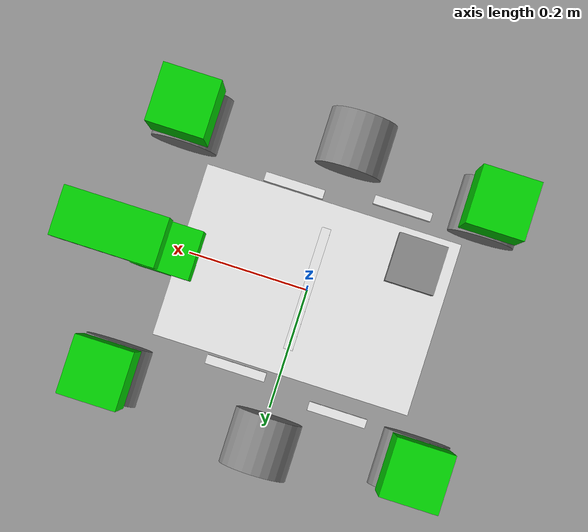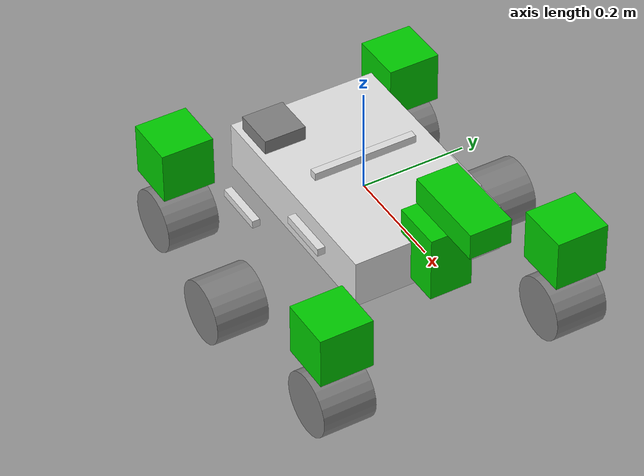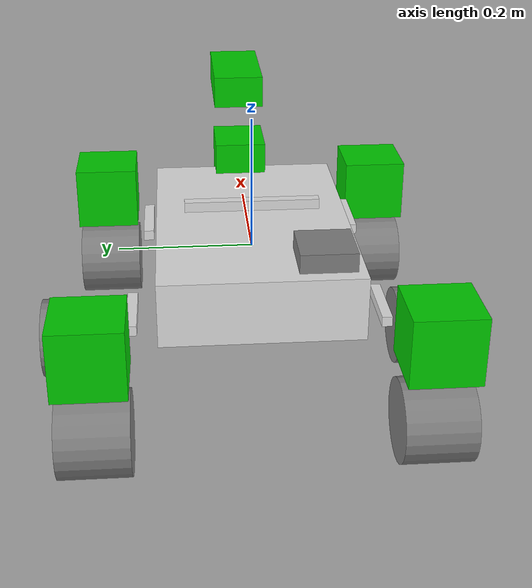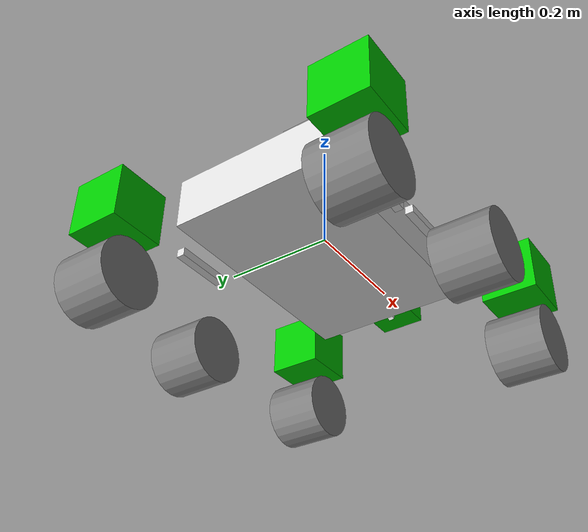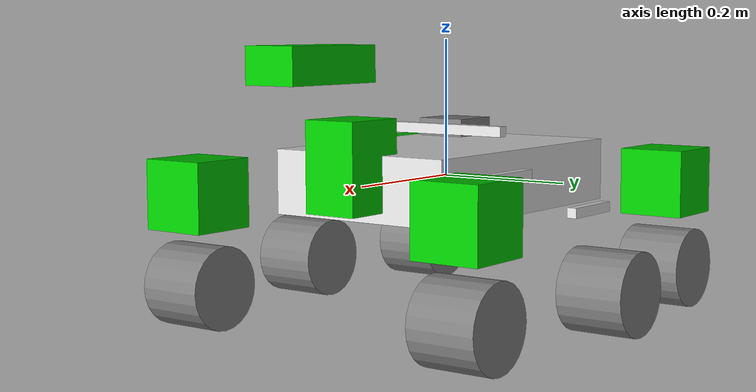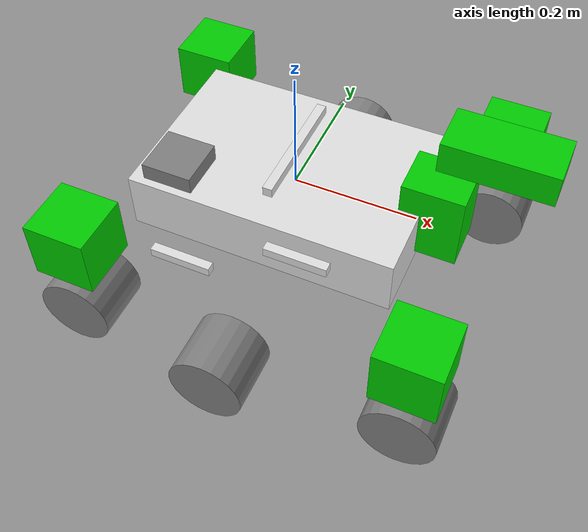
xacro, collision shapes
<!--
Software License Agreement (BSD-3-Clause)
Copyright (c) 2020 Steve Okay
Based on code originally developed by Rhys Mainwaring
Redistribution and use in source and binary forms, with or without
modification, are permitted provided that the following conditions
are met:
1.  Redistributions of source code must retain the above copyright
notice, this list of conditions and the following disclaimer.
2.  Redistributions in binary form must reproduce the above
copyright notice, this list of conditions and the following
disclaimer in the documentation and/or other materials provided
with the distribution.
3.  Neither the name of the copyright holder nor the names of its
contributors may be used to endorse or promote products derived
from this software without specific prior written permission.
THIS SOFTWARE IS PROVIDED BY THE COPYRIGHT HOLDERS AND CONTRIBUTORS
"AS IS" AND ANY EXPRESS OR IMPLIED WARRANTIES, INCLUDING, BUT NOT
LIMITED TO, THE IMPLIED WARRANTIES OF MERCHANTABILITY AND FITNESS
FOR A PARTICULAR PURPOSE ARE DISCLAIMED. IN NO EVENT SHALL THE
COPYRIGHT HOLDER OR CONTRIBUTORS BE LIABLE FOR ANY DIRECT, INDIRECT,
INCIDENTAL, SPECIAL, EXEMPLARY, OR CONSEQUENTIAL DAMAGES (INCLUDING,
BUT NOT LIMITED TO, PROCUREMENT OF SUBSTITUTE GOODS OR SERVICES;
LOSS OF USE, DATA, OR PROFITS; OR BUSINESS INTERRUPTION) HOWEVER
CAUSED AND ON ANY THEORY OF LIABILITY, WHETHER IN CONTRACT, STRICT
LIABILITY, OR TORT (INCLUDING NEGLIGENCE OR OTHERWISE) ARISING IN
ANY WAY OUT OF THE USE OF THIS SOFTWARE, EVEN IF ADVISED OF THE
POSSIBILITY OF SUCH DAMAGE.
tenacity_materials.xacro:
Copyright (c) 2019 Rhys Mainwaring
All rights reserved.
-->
<?xml version="1.0" ?>

<!-- Robot description for Tenacity, a Sawppy Rover robot.

 -->
<robot name="tenacity" xmlns:xacro="http://ros.org/wiki/xacro">
    <!-- Include macros for materials, inertials, sensors -->
    <xacro:include filename="$(find tenacity_description)/urdf/tenacity_materials.xacro"/>
    <xacro:include filename="$(find tenacity_description)/urdf/tenacity_inertials.xacro"/>
    <xacro:include filename="$(find tenacity_description)/urdf/tenacity_laser.xacro"/>
    <xacro:include filename="$(find tenacity_description)/urdf/tenacity_imu.xacro"/>
    <xacro:include filename="$(find tenacity_description)/urdf/sensor_stalk.xacro"/>
    <xacro:include filename="$(find tenacity_description)/urdf/mast_mount.xacro"/>
    <xacro:include filename="$(find tenacity_description)/urdf/astra.xacro"/>
    <xacro:include filename="$(find tenacity_description)/urdf/tenacity_sonar.xacro"/>
    <xacro:include filename="$(find tenacity_description)/urdf/tenacity_hazcam.xacro"/>

    <!-- Chassis -->
    <xacro:property name="makerbeam_width" value="0.015" />
    <xacro:property name="makerbeam_depth" value="0.015" />
    <xacro:property name="makerbeam_density" value="0.100" />

    <xacro:property name="body_box_length" value="0.425" />
    <xacro:property name="body_box_width" value="0.285" />
    <xacro:property name="body_box_depth" value="0.093" />
    <xacro:property name="body_box_mass" value="1.00" />

    <xacro:property name="front_rocker_arm_length" value="0.182" />
    <xacro:property name="back_rocker_arm_length" value="0.161" />
    <xacro:property name="front_rocker_arm_angle" value="0.3490658503988659" />
    <xacro:property name="back_rocker_arm_angle" value="-0.3141592653589793" />

    <xacro:property name="front_bogie_arm_length" value="0.122" />
    <xacro:property name="back_bogie_arm_length" value="0.117" />
    <xacro:property name="front_bogie_arm_angle" value="0.5201081170943103" />
    <xacro:property name="back_bogie_arm_angle" value="0.25656340004316625" />

    <xacro:property name="wheel_width" value="0.100" />
    <xacro:property name="wheel_radius" value="0.060" />

    <!-- The base link - the reference link for the entire model -->
    <link name="base_link">
        <visual>
            <origin rpy="0 0 0" xyz="0 0 0" />
            <geometry>
                <box size="0.01 0.01 0.01"/>
            </geometry>
            <material name="orange" />
        </visual>
        <collision>
            <origin rpy="0 0 0" xyz="0 0 0" />
            <geometry>
                <box size="0.01 0.01 0.01"/>
            </geometry>
        </collision>
        <xacro:solid_cuboid_inertial
            rpy="0 0 0" xyz="0 0 0"
            mass="0.01"
            x="0.01" y="0.01" z="0.01" />
    </link>

    <gazebo reference="base_link">
        <material>Gazebo/Orange</material>
    </gazebo>

    <link name="body_box_link">
        <visual>
            <origin rpy="0 0 0" xyz="0 0 0" />
            <geometry>
                <mesh filename="package://tenacity_description/meshes/bases/body_box.stl" />
            </geometry>
            <material name="silver" />
        </visual>
        <collision>
            <origin rpy="0 0 0" xyz="0 0 0" />
            <geometry>
                <box size="${body_box_length} ${body_box_width} ${body_box_depth}"/>
            </geometry>
        </collision>
        <xacro:solid_cuboid_inertial
            rpy="0 0 0" xyz="0 0 0"
            mass="${body_box_mass}"
            x="${body_box_length}" y="${body_box_width}" z="${body_box_depth}" />
    </link>

    <gazebo reference="body_box_link">
        <material>Gazebo/Silver</material>
    </gazebo>

    <joint name="body_box_joint" type="fixed">
        <origin rpy="0 0 0" xyz="0 0 0"/>
        <parent link="base_link" />
        <child link="body_box_link" />
    </joint>

    <gazebo reference="body_box_joint">
    </gazebo>

    <!-- Differential -->
    <link name="diff_brace_link">
        <visual>
            <origin rpy="0 0 0" xyz="0 0 0" />
            <geometry>
                <mesh filename="package://tenacity_description/meshes/bases/differential.stl" />
            </geometry>
            <material name="silver" />
        </visual>
        <collision>
            <origin rpy="0 0 ${math_pi_over_2}" xyz="0 0 0" />
            <geometry>
                <box size="0.200 0.015 0.015"/>
            </geometry>
        </collision>
        <xacro:solid_cuboid_inertial
            rpy="0 0 ${math_pi_over_2}" xyz="0 0 0"
            mass="0.1"
            x="0.2" y="0.015" z="0.015" />
    </link>

    <gazebo reference="diff_brace_link">
        <material>Gazebo/Silver</material>
    </gazebo>

    <joint name="diff_brace_joint" type="revolute">
        <origin rpy="0 0 0" xyz="0 0 0.0681"/>
        <axis xyz="0 0 1" />
        <limit
            lower="${-math_pi_over_4}"
            upper="${math_pi_over_4}"
            effort="100.0"
            velocity="100.0" />
        <parent link="base_link" />
        <child link="diff_brace_link" />
    </joint>

    <gazebo reference="diff_brace_joint">
        <provideFeedback>true</provideFeedback>
        <implicitSpringDamper>true</implicitSpringDamper>
    </gazebo>

    <xacro:macro name="turnbuckle_assembly" params="lat_label reflect">
        <gazebo>
            <link name="${lat_label}_turnbuckle_link">
                <pose>0.035 ${reflect * 0.17} 0.07 0 0 0</pose>
                <visual name="${lat_label}_turnbuckle_visual">
                    <pose>0 0 0 0 0 0</pose>
                    <geometry>
                        <mesh>
                            <uri>package://tenacity_description/meshes/bases/turnbuckle.stl</uri>
                        </mesh>
                    </geometry>
                    <material>
                        <script>
                            <name>Gazebo/Blue</name>
                        </script>
                    </material>
                </visual>
                <collision name="${lat_label}_turnbuckle_collision">
                    <pose>0 0 0 0 ${math_pi_over_2} 0</pose>
                    <geometry>
                        <cylinder>
                            <length>0.07</length>
                            <radius>0.0025</radius>
                        </cylinder>
                    </geometry>
                </collision>
                <inertial>
                    <mass>0.01</mass>
                    <inertia>
                        <ixx>0.0001</ixx>
                        <ixy>0</ixy>
                        <ixz>0</ixz>
                        <iyy>0.0001</iyy>
                        <iyz>0</iyz>
                        <izz>0.0001</izz>
                    </inertia>
                </inertial>
            </link>

            <joint name="back_${lat_label}_turnbuckle_joint" type="ball">
                <pose>-0.035 0 0 0 0 0</pose>
                <parent>diff_brace_link</parent>
                <child>${lat_label}_turnbuckle_link</child>
            </joint>

            <joint name="front_${lat_label}_turnbuckle_joint" type="ball">
                <pose>0.035 0 0 0 0 0</pose>
                <parent>${lat_label}_rocker_link</parent>
                <child>${lat_label}_turnbuckle_link</child>
            </joint>
        </gazebo>
    </xacro:macro>
    <xacro:turnbuckle_assembly lat_label="left" reflect="1"/>
    <xacro:turnbuckle_assembly lat_label="right" reflect="-1"/>

    <!-- Rocker -->
    <xacro:macro name="rocker_link" params="lat_label reflect">
        <link name="${lat_label}_rocker_link">
            <visual>
                <origin rpy="0 0 0" xyz="0 0 0" />
                <geometry>
                    <mesh filename="package://tenacity_description/meshes/bases/${lat_label}_rocker_asm.stl" />
                </geometry>
                <material name="silver" />
            </visual>
            <collision>
                <origin rpy="0 0 0" xyz="0 0 0" />
                <geometry>
                    <box size="0.1 0.015 0.015"/>
                </geometry>
            </collision>
            <xacro:solid_cuboid_inertial
                rpy="0 0 0" xyz="0 0 0"
                mass="0.25"
                x="0.1" y="0.015" z="0.015" />
        </link>

        <gazebo reference="${lat_label}_rocker_link">
            <material>Gazebo/Silver</material>
        </gazebo>

    </xacro:macro>
    <xacro:rocker_link lat_label="left" reflect="1"/>
    <xacro:rocker_link lat_label="right" reflect="-1"/>

    <!-- Rocker Joint  -->
    <xacro:macro name="rocker_joint" params="lat_label reflect">
        <joint name="${lat_label}_rocker_joint" type="continuous">
            <origin rpy="0 0 0" xyz="0.071 ${reflect * 0.155} 0.0118"/>
            <axis xyz="0 1 0" />
            <limit
                lower="${-math_pi_over_4}"
                upper="${math_pi_over_4}"
                effort="100.0"
                velocity="100.0" />
            <parent link="base_link" />
            <child link="${lat_label}_rocker_link" />
        </joint>

        <gazebo reference="${lat_label}_rocker_joint">
            <provideFeedback>true</provideFeedback>
            <implicitSpringDamper>true</implicitSpringDamper>
        </gazebo>
    </xacro:macro>
    <!-- Fixed Rocker Joint (for testing)  -->
    <xacro:rocker_joint lat_label="left" reflect="1"/>
    <xacro:rocker_joint lat_label="right" reflect="-1"/>

    <xacro:macro name="corner_link" params="lon_label lat_label reflect">
        <link name="${lon_label}_${lat_label}_corner_link">
            <visual>
                <origin rpy="0 0 0" xyz="0 0 0" />
                <geometry>
                    <mesh filename="package://tenacity_description/meshes/bases/${lon_label}_${lat_label}_steering_asm.stl" />
                </geometry>
                <material name="green" />
            </visual>
            <collision>
                <origin rpy="0 0 0" xyz="0 0 0" />
                <geometry>
                    <box size="0.1 0.1 0.1"/>
                </geometry>
            </collision>
            <xacro:solid_cuboid_inertial
                rpy="0 0 0" xyz="0 0 0"
                mass="0.25"
                x="0.1" y="0.1" z="0.1" />
        </link>
        <gazebo reference="${lon_label}_${lat_label}_corner_link">
            <material>Gazebo/Green</material>
        </gazebo>
      </xacro:macro>

    <xacro:macro name="corner_link_box" params="lon_label lat_label reflect">
        <link name="${lon_label}_${lat_label}_corner_link_box">
            <visual>
                <origin rpy="0 0 0" xyz="0.05 0 0.05" />
                <geometry>
                     <box size="0.1 0.1 0.1"/>
                </geometry>
                <material name="blue" />
            </visual>
            <collision>
                <origin rpy="0 0 0" xyz="0 0 0" />
                <geometry>
                    <box size="0.1 0.1 0.1"/>
                </geometry>
            </collision>
            <xacro:solid_cuboid_inertial
                rpy="0 0 0" xyz="0 0 0"
                mass="0.25"
                x="0.1" y="0.1" z="0.1" />
        </link>

        <gazebo reference="${lon_label}_${lat_label}_corner_link_box">
            <material>Gazebo/Blue</material>
        </gazebo>

    </xacro:macro>
    <xacro:corner_link lon_label="front" lat_label="left" reflect="1"/>
    <xacro:corner_link lon_label="front" lat_label="right" reflect="-1"/>

    <xacro:macro name="front_corner_joint" params="lat_label reflect">
        <joint name="front_${lat_label}_corner_joint" type="continuous">
            <origin rpy="0 0 0" xyz="0.2116 ${reflect * 0.075} -0.0279"/>
            <axis xyz="0 0 1" />
            <parent link="${lat_label}_rocker_link" />
            <child link="front_${lat_label}_corner_link" />
        </joint>

        <transmission name="front_${lat_label}_corner_transmission" >
            <type>transmission_interface/SimpleTransmission</type>
            <actuator name="front_${lat_label}_corner_actuator">
                <mechanicalReduction>1</mechanicalReduction>
            </actuator>
            <joint name="front_${lat_label}_corner_joint">
                <hardwareInterface>hardware_interface/PositionJointInterface</hardwareInterface>
            </joint>
        </transmission>

        <gazebo reference="front_${lat_label}_corner_joint">
            <provideFeedback>true</provideFeedback>
        </gazebo>
    </xacro:macro>
    <xacro:front_corner_joint lat_label="left" reflect="1"/>
    <xacro:front_corner_joint lat_label="right" reflect="-1"/>

    <xacro:macro name="wheel_link" params="lon_label lat_label reflect">
        <link name="${lon_label}_${lat_label}_wheel_link">
            <visual>
                <origin rpy="${reflect * math_pi_over_2} 0 0" xyz="0 0 0" />
                <geometry>
                    <mesh filename="package://tenacity_description/meshes/wheels/wheel_asm.stl" />
                </geometry>
                <material name="dark_gray" />
            </visual>
            <collision>
                <origin rpy="${reflect * math_pi_over_2} 0 0" xyz="0 0 0" />
                <geometry>
                    <cylinder length="${wheel_width}" radius="${wheel_radius}" />
                </geometry>
            </collision>
            <xacro:solid_cylinder_inertial
                rpy="0 0 0" xyz="0 0 0"
                mass="0.25"
                radius="${wheel_radius}" length="${wheel_width}" />
        </link>

        <gazebo reference="${lon_label}_${lat_label}_wheel_link">
            <material>Gazebo/DarkGray</material>
        </gazebo>
    </xacro:macro>
    <xacro:wheel_link lon_label="front" lat_label="left" reflect="1"/>
    <xacro:wheel_link lon_label="front" lat_label="right" reflect="-1"/>

    <xacro:macro name="corner_wheel_joint" params="lon_label lat_label reflect">
        <joint name="${lon_label}_${lat_label}_wheel_joint" type="continuous">
            <origin rpy="0 0 0" xyz="0 0 -0.132"/>
            <axis xyz="0 1 0" />
            <parent link="${lon_label}_${lat_label}_corner_link" />
            <child link="${lon_label}_${lat_label}_wheel_link" />
        </joint>

        <transmission name="${lon_label}_${lat_label}_wheel_transmission" >
            <type>transmission_interface/SimpleTransmission</type>
            <actuator name="${lon_label}_${lat_label}_wheel_actuator">
                <mechanicalReduction>1</mechanicalReduction>
            </actuator>
            <joint name="${lon_label}_${lat_label}_wheel_joint">
                <hardwareInterface>hardware_interface/VelocityJointInterface</hardwareInterface>
            </joint>
        </transmission>

        <gazebo reference="${lon_label}_${lat_label}_wheel_joint">
            <provideFeedback>true</provideFeedback>
        </gazebo>
    </xacro:macro>
    <xacro:corner_wheel_joint lon_label="front" lat_label="left" reflect="1"/>
    <xacro:corner_wheel_joint lon_label="front" lat_label="right" reflect="-1"/>

    <!-- Bogie -->
    <xacro:macro name="bogie_link" params="lat_label reflect">
        <link name="${lat_label}_bogie_link">
            <visual>
                <origin rpy="0 0 0" xyz="0 0 0" />
                <geometry>
                    <mesh filename="package://tenacity_description/meshes/bases/${lat_label}_bogie_asm.stl" />
                </geometry>
                <material name="silver" />
            </visual>
            <collision>
                <origin rpy="0 0 0" xyz="0 0 0" />
                <geometry>
                    <box size="0.1 0.015 0.015"/>
                </geometry>
            </collision>
            <xacro:solid_cuboid_inertial
                rpy="0 0 0" xyz="0 0 0"
                mass="0.25"
                x="0.1" y="0.015" z="0.015" />
        </link>

        <gazebo reference="${lat_label}_bogie_link">
            <material>Gazebo/Silver</material>
        </gazebo>
    </xacro:macro>
    <xacro:bogie_link lat_label="left" reflect="1"/>
    <xacro:bogie_link lat_label="right" reflect="-1"/>

    <!-- Bogie Joint  -->
    <xacro:macro name="bogie_joint" params="lat_label reflect">
        <joint name="${lat_label}_bogie_joint" type="revolute">
            <origin rpy="0 0 0" xyz="-0.181 ${reflect * 0.025} -0.062"/>
            <axis xyz="0 1 0" />
            <limit
                lower="${-math_pi_over_4}"
                upper="${math_pi_over_4}"
                effort="100.0"
                velocity="100.0" />
            <parent link="${lat_label}_rocker_link" />
            <child link="${lat_label}_bogie_link" />
        </joint>

        <gazebo reference="${lat_label}_bogie_joint">
            <provideFeedback>true</provideFeedback>
            <implicitSpringDamper>true</implicitSpringDamper>
        </gazebo>
    </xacro:macro>
    <!-- Fixed Bogie Joint  (for testing) -->
    <xacro:bogie_joint lat_label="left" reflect="1"/>
    <xacro:bogie_joint lat_label="right" reflect="-1"/>

    <xacro:wheel_link lon_label="mid" lat_label="left" reflect="1"/>
    <xacro:wheel_link lon_label="mid" lat_label="right" reflect="-1"/>

    <xacro:macro name="mid_wheel_joint" params="lat_label reflect">
        <joint name="mid_${lat_label}_wheel_joint" type="continuous">
            <origin rpy="0 0 0" xyz="0.1063 ${reflect * 0.0929} -0.0959"/>
            <axis xyz="0 1 0" />
            <parent link="${lat_label}_bogie_link" />
            <child link="mid_${lat_label}_wheel_link" />
        </joint>

        <transmission name="mid_${lat_label}_wheel_transmission" >
            <type>transmission_interface/SimpleTransmission</type>
            <actuator name="mid_${lat_label}_wheel_actuator">
                <mechanicalReduction>1</mechanicalReduction>
            </actuator>
            <joint name="mid_${lat_label}_wheel_joint">
                <hardwareInterface>hardware_interface/VelocityJointInterface</hardwareInterface>
            </joint>
        </transmission>

        <gazebo reference="mid_${lat_label}_wheel_joint">
            <provideFeedback>true</provideFeedback>
        </gazebo>
    </xacro:macro>
    <xacro:mid_wheel_joint lat_label="left" reflect="1"/>
    <xacro:mid_wheel_joint lat_label="right" reflect="-1"/>

    <xacro:corner_link lon_label="back" lat_label="left" reflect="1"/>
    <xacro:corner_link lon_label="back" lat_label="right" reflect="-1"/>

    <xacro:macro name="back_corner_joint" params="lat_label reflect">
        <joint name="back_${lat_label}_corner_joint" type="continuous">
            <origin rpy="0 0 0" xyz="-0.149 ${reflect * 0.05} 0.0338"/>
            <axis xyz="0 0 1" />
            <parent link="${lat_label}_bogie_link" />
            <child link="back_${lat_label}_corner_link" />
        </joint>

        <transmission name="back_${lat_label}_corner_transmission" >
            <type>transmission_interface/SimpleTransmission</type>
            <actuator name="back_${lat_label}_corner_actuator">
                <mechanicalReduction>1</mechanicalReduction>
            </actuator>
            <joint name="back_${lat_label}_corner_joint">
                <hardwareInterface>hardware_interface/PositionJointInterface</hardwareInterface>
            </joint>
        </transmission>

        <gazebo reference="back_${lat_label}_corner_joint">
            <provideFeedback>true</provideFeedback>
        </gazebo>
    </xacro:macro>
    <xacro:back_corner_joint lat_label="left" reflect="1"/>
    <xacro:back_corner_joint lat_label="right" reflect="-1"/>

    <xacro:wheel_link lon_label="back" lat_label="left" reflect="1"/>
    <xacro:wheel_link lon_label="back" lat_label="right" reflect="-1"/>

    <xacro:corner_wheel_joint lon_label="back" lat_label="left" reflect="1"/>
    <xacro:corner_wheel_joint lon_label="back" lat_label="right" reflect="-1"/>

    <!-- AstraCam -->
    <xacro:astra_link />
    <xacro:astra_joint x="0.3080" y="0.005" z="0.170" roll="0.00" pitch="0.00" yaw="0.00" />

    <!-- Antenna/Sensor Mast -->
    <xacro:mast_mount_link />
    <xacro:mast_mount_joint x="-0.152" y="-0.090" z="0.050" />

     <!-- SensorStalk -->
     <xacro:sensor_stalk_link />
     <xacro:sensor_stalk_joint x="0.2280" y="0.005" z="0.0320" />

     <!-- Sonar Sensor -->
     <xacro:sonar_link mount_point="cliff"/>
     <xacro:sonar_joint x="0.230" y="0.005" z="-0.0320" roll="0.00" pitch="0.4" yaw="0.00" mount_point="cliff"/>

     <xacro:sonar_link mount_point="left"/>
     <xacro:sonar_joint x="0.285" y="0.2559" z="0.0180" roll="0.00" pitch="0" yaw="0.65" mount_point="left"/>

     <xacro:sonar_link mount_point="right"/>
     <xacro:sonar_joint x="0.285" y="-0.2559" z="0.0180" roll="0.00" pitch="0" yaw="-0.65" mount_point="right"/>

     <!-- Hazard Cameras -->
     <xacro:hazcam_link mount_point="left"/>
     <xacro:hazcam_joint x="0.295" y="0.2559" z="0.0180" roll="0.00" pitch="0" yaw="1.5757" mount_point="left"/>

     <xacro:hazcam_link mount_point="right"/>
     <xacro:hazcam_joint x="0.295" y="-0.2559" z="0.0180" roll="0.00" pitch="0" yaw="-1.5757" mount_point="right"/>

     <!-- IMU -->
     <xacro:imu_link />
     <xacro:imu_joint x="0.0" y="0.0" z="-0.008" />

</robot>

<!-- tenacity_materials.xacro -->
<!--  xacro macros for robot materials.
 -->
<robot name="tenacity_materials" xmlns:xacro="http://ros.org/wiki/xacro">
   <material name="red">
        <color rgba="0.8 0 0 1"/>
    </material>

    <material name="green">
        <color rgba="0 0.8 0 1"/>
    </material>

    <material name="blue">
        <color rgba="0 0 0.8 1"/>
    </material>

    <material name="orange">
        <color rgba="0.8 0.25 0 1"/>
    </material>

    <material name="black">
        <color rgba="0 0 0 1"/>
    </material>

    <material name="dark_gray">
        <color rgba="0.5 0.5 0.5 1"/>
    </material>

    <material name="gray">
        <color rgba="0.753 0.753 0.753 1"/>
    </material>

    <material name="silver">
        <color rgba="0.88 0.88 0.88 1"/>
    </material>

    <material name="white">
        <color rgba="1 1 1 1"/>
    </material>
</robot>

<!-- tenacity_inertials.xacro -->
<!--  xacro macros for intertials.

    Define xacro macros for math constants and inertials:

    - solid cuboid
    - solid cylinder
    - null (a placeholder inertial for logical link elements)
 -->
<robot name="tenacity_inertials" xmlns:xacro="http://ros.org/wiki/xacro">

    <!-- Math constants -->
    <xacro:property name="math_pi"        value="3.141592653589793" />
    <xacro:property name="math_pi_over_2" value="1.5707963267948966" />
    <xacro:property name="math_pi_over_4" value="0.785398163397448" />

    <!-- Inertial for solid cuboid with dimensions x y z  -->
    <xacro:macro name="solid_cuboid_inertial" params="rpy xyz mass x y z">
        <inertial>
            <origin rpy="${rpy}" xyz="${xyz}"/>
            <mass value="${mass}" />
            <inertia
                ixx="${mass * (y * y + z * z) / 12.0}" ixy="0.0" ixz="0.0"
                iyy="${mass * (x * x + z * z) / 12.0}" iyz="0.0"
                izz="${mass * (x * x + y * y) / 12.0}" />
        </inertial>
    </xacro:macro>

    <!-- Inertial for solid cylinder with radius and length aligned to z-axis  -->
    <xacro:macro name="solid_cylinder_inertial" params="rpy xyz mass radius length">
        <inertial>
            <origin rpy="${rpy}" xyz="${xyz}"/>
            <mass value="${mass}" />
            <inertia
                ixx="${mass * (3.0 * radius * radius + length * length) / 12.0}" ixy="0.0" ixz="0.0"
                iyy="${mass * (3.0 * radius * radius + length * length) / 12.0}" iyz="0.0"
                izz="${mass * (radius * radius) / 2.0}" />
        </inertial>
    </xacro:macro>

    <!-- A null inertial - used in placeholder links to esure the model will work in Gazebo -->
    <xacro:macro name="null_inertial">
        <inertial>
            <mass value="0.001"/>
            <inertia ixx="0.001" ixy="0" ixz="0" iyy="0.001" iyz="0" izz="0.001"/>
        </inertial>
    </xacro:macro>
</robot>

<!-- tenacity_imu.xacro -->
<!--  xacro macros for imu.

 -->
<robot name="tenacity_imu" xmlns:xacro="http://ros.org/wiki/xacro">
    <xacro:macro name="imu_link">
        <link name="imu">
            <visual>
                <origin rpy="0 0 0" xyz="0 0 0" />
                <geometry>
                 <box size="0.01 0.01 0.01"/>
                </geometry>
                <material name="green" />
            </visual>
            <collision>
                <origin rpy="0 0 0" xyz="0 0 0" />
                <geometry>
                    <box size="0.01 0.01 0.01"/>
                </geometry>
            </collision>
            <xacro:null_inertial />
        </link>
</xacro:macro>

    <xacro:macro name="imu_joint" params="x y z" >
        <joint name="imu_joint" type="fixed">
            <origin rpy="0 0 0" xyz="${x} ${y} ${z}"/>
            <parent link="base_link" />
            <child link="imu" />
        </joint>

        <gazebo reference="imu_joint">
            <preserveFixedJoint>true</preserveFixedJoint>
        </gazebo>
    </xacro:macro>
</robot>

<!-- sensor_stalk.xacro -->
<!--  xacro macros for sensor_stalk mount -->
<robot name="sensor_stalk" xmlns:xacro="http://ros.org/wiki/xacro">

      <xacro:property name="sensor_stalk_length" value="0.0803" />
      <xacro:property name="sensor_stalk_width" value="0.0957" />
      <xacro:property name="sensor_stalk_depth" value="0.1267" />
      <xacro:property name="sensor_stalk_mass" value="0.15" />

    <xacro:macro name="sensor_stalk_link">
      <link name="sensor_stalk">
          <visual>
              <origin rpy="0 0 0" xyz="0 0 0" />
              <geometry>
                  <mesh filename="package://tenacity_description/meshes/bases/SensorStalk_10_degrees.stl" scale="0.001 0.001 0.001"/>
              </geometry>
              <material name="green" />
          </visual>
          <collision>
              <origin rpy="0 0 0" xyz="0 0 0" />
              <geometry>
                  <box size="${sensor_stalk_length} ${sensor_stalk_width} ${sensor_stalk_depth}"/>
              </geometry>
          </collision>
          <xacro:solid_cuboid_inertial
              rpy="0 0 0" xyz="0 0 0"
              mass="${sensor_stalk_mass}"
              x="${sensor_stalk_length}" y="${sensor_stalk_width}" z="${sensor_stalk_depth}" />
      </link>

      <gazebo reference="sensor_stalk">
          <material>Gazebo/Green</material>
      </gazebo>

      <gazebo reference="sensor_stalk_joint">
      </gazebo>
    </xacro:macro>

    <xacro:macro name="sensor_stalk_joint" params="x y z" >
        <joint name="sensor_stalk_joint" type="fixed">
            <origin rpy="0 0 1.57" xyz="${x} ${y} ${z}"/>
            <parent link="base_link" />
            <child link="sensor_stalk" />
        </joint>

        <gazebo reference="sensor_stalk_joint">
            <preserveFixedJoint>true</preserveFixedJoint>
        </gazebo>
    </xacro:macro>
</robot>

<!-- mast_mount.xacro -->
<!--  xacro macros for mast_mount sensor (rplidar_a1).

 -->
<robot name="mast_mount" xmlns:xacro="http://ros.org/wiki/xacro">

      <xacro:property name="mast_mount_length" value="0.080" />
      <xacro:property name="mast_mount_width" value="0.080" />
      <xacro:property name="mast_mount_depth" value="0.048" />

    <xacro:macro name="mast_mount_link">
      <link name="mast_mount">
          <visual>
              <origin rpy="0 0 0" xyz="0 0 0" />
              <geometry>
		       <mesh filename="package://tenacity_description/meshes/bases/antenna_shaft_base.stl" scale="0.01 0.01 0.01"/>
              </geometry>
              <material name="dark_gray" />
          </visual>
          <collision>
              <origin rpy="0 0 0" xyz="0 0 0" />
              <geometry>
                 <box size="0.080 0.080 0.048"/>
              </geometry>
          </collision>
      </link>

      <gazebo reference="mast_mount">
          <material>Gazebo/DarkGray</material>
      </gazebo>

      <gazebo reference="mast_mount_joint">
      </gazebo>
    </xacro:macro>

    <xacro:macro name="mast_mount_joint" params="x y z" >
        <joint name="mast_mount_joint" type="fixed">
            <origin rpy="0 0 1.57" xyz="${x} ${y} ${z}"/>
            <parent link="base_link" />
            <child link="mast_mount" />
        </joint>

        <gazebo reference="mast_mount_joint">
            <preserveFixedJoint>true</preserveFixedJoint>
        </gazebo>
    </xacro:macro>
</robot>

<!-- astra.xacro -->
<!--  xacro macros for astra mount -->
<robot name="astra" xmlns:xacro="http://ros.org/wiki/xacro">

      <xacro:property name="astra_length" value="0.1648" />
      <xacro:property name="astra_width" value="0.0789" />
      <xacro:property name="astra_depth" value="0.050" />
      <xacro:property name="astra_mass" value="0.15" />

    <xacro:include filename="$(find tenacity_description)/urdf/astra.gazebo" />
    <xacro:macro name="astra_link">
      <link name="astra">
              <pose>0.0 0.0 0.0 0.0 0.0 0.0</pose>
          <visual>
              <origin rpy="0 0 0" xyz="-0.05 0 0" />
              <geometry>
                     <mesh filename="package://tenacity_description/meshes/sensors/orbbec_astra_camera.dae"/>
              </geometry>
              <material name="green" />
          </visual>
          <collision>
              <origin rpy="0 0 0" xyz="0 0 0" />
              <geometry>
		      <box size="${astra_length} ${astra_width} ${astra_depth}" />
              </geometry>
          </collision>
          <xacro:solid_cuboid_inertial
              rpy="0 0 0" xyz="0 0 0"
              mass="${astra_mass}"
              x="${astra_length}" y="${astra_width}" z="${astra_depth}" />
      </link>

      <gazebo reference="astra_joint">
      </gazebo>
    </xacro:macro>

    <xacro:macro name="astra_joint" params="x y z roll pitch yaw" >
        <joint name="astra_joint" type="fixed">
		<origin rpy="${roll} ${pitch} ${yaw}" xyz="${x} ${y} ${z}"/>
            <parent link="base_link" />
            <child link="astra" />
        </joint>

        <gazebo reference="astra_joint">
            <preserveFixedJoint>true</preserveFixedJoint>
        </gazebo>
    </xacro:macro>
</robot>

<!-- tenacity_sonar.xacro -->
<!--  xacro macros for laser sensor (rplidar_a1).

 -->
<robot name="forward_sonar" xmlns:xacro="http://ros.org/wiki/xacro">
    <xacro:macro name="sonar_link" params="mount_point">
        <link name="${mount_point}_sonar">
            <visual>
                <origin rpy="0 0 0" xyz="0 0 0" />
                <geometry>
	   	    <box size="0.01 0.01 0.01"/>
                </geometry>
                <material name="white" />
            </visual>
            <collision>
                <origin rpy="0 0 0" xyz="0 0 0" />
                <geometry>
	   	    <box size="0.01 0.01 0.01"/>
                </geometry>
            </collision>
            <xacro:solid_cuboid_inertial rpy="0 0 0" xyz="0 0 0" mass="0.150" x="0.06" y="0.05" z="0.05"/>
        </link>

        <gazebo reference="${mount_point}_sonar">
            <material>Gazebo/White</material>

            <sensor type="ray" name="sonar_sensor">
                <always_on>true</always_on>
                <update_rate>50</update_rate>
                <visualize>true</visualize>
                <topic>/sensors/ultrasound/${mount_point}</topic>
                <pose>0 0 0 0 0 0</pose>
                <ray>
                     <scan>
                <horizontal>
                    <samples>50</samples>
                    <resolution>1</resolution>
                    <min_angle>-0.134533</min_angle>
                    <max_angle>0.134533</max_angle>
                </horizontal>
                <vertical>
                    <samples>50</samples>
                    <resolution>1</resolution>
                    <min_angle>-0.134533</min_angle>
                    <max_angle>0.134533</max_angle>
                </vertical>
                    </scan>

                    <range>
                        <min>0.1</min>
                        <max>2.0</max>
                        <resolution>0.05</resolution>
                    </range>
                    <noise>
                        <type>gaussian</type>
                        <mean>0.0</mean>
                        <stddev>0.01</stddev>
                    </noise>
                </ray>
                <plugin filename="libgazebo_ros_range.so" name="gazebo_ros_range">
                    <frameName>sonar</frameName>
                    <topicName>/sensors/ultrasound/${mount_point}</topicName>
                    <gaussianNoise>0.000</gaussianNoise>
                    <alwaysOn>true</alwaysOn>
                    <updateRate>10</updateRate>
                    <radiation>ultrasound</radiation>
                    <fov>0.20</fov>
                    <visualize>true</visualize>
                </plugin>
            </sensor>
        </gazebo>
    </xacro:macro>

    <xacro:macro name="sonar_joint" params="x y z roll pitch yaw mount_point" >
        <joint name="${mount_point}_sonar_joint" type="fixed">
            <origin rpy="${roll} ${pitch} ${yaw}" xyz="${x} ${y} ${z}"/>
            <parent link="base_link" />
            <child link="${mount_point}_sonar" />
        </joint>

        <gazebo reference="${mount_point}_sonar_joint">
            <preserveFixedJoint>true</preserveFixedJoint>
        </gazebo>
    </xacro:macro>
</robot>

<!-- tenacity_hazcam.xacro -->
<!--  xacro macros for hazcam mount -->
<robot name="hazcam" xmlns:xacro="http://ros.org/wiki/xacro">
    <xacro:macro name="hazcam_link" params="mount_point">
      <link name="hazcam_${mount_point}">
              <pose>0.0 0.0 0.0 0.0 0.0 0.0</pose>
          <visual>
              <origin rpy="0 0 0" xyz="-0.05 0 0" />
              <geometry>
		      <box size="0.01 0.01 0.01" />
              </geometry>
              <material name="green" />
          </visual>
          <collision>
              <origin rpy="0 0 0" xyz="0 0 0" />
              <geometry>
		      <box size="0.01 0.01 0.01" />
              </geometry>
          </collision>
          <xacro:solid_cuboid_inertial
              rpy="0 0 0" xyz="0 0 0"
              mass="0.015"
              x="0.01" y="0.01" z="0.01" />
      </link>

  <gazebo reference="hazcam_${mount_point}">
      <material>Gazebo/White</material>
    <sensor type="camera" name="hazcam_camera">
      <update_rate>30.0</update_rate>
      <camera name="head">
        <horizontal_fov>1.3962634</horizontal_fov>
        <image>
          <width>800</width>
          <height>800</height>
          <format>R8G8B8</format>
        </image>
        <clip>
          <near>0.02</near>
          <far>300</far>
        </clip>
        <noise>
          <type>gaussian</type>
          <!-- Noise is sampled independently per pixel on each frame.
               That pixel's noise value is added to each of its color
               channels, which at that point lie in the range [0,1]. -->
          <mean>0.0</mean>
          <stddev>0.007</stddev>
        </noise>
      </camera>
      <plugin name="camera_controller" filename="libgazebo_ros_camera.so">
        <alwaysOn>true</alwaysOn>
        <updateRate>0.0</updateRate>
        <cameraName>hazcam_${mount_point}</cameraName>
        <imageTopicName>image_raw</imageTopicName>
        <cameraInfoTopicName>camera_info</cameraInfoTopicName>
        <frameName>camera_link_optical</frameName>
        <!-- setting hackBaseline to anything but 0.0 will cause a misalignment
            between the gazebo sensor image and the frame it is supposed to
            be attached to -->
        <hackBaseline>0.0</hackBaseline>
        <distortionK1>0.0</distortionK1>
        <distortionK2>0.0</distortionK2>
        <distortionK3>0.0</distortionK3>
        <distortionT1>0.0</distortionT1>
        <distortionT2>0.0</distortionT2>
        <CxPrime>0</CxPrime>
        <Cx>0.0</Cx>
        <Cy>0.0</Cy>
        <focalLength>0.0</focalLength>
      </plugin>
    </sensor>
  </gazebo>

      <gazebo reference="hazcam_joint_${mount_point}">
      </gazebo>
    </xacro:macro>

    <xacro:macro name="hazcam_joint" params="x y z roll pitch yaw mount_point" >
        <joint name="hazcam_joint_${mount_point}" type="fixed">
		<origin rpy="${roll} ${pitch} ${yaw}" xyz="${x} ${y} ${z}"/>
            <parent link="base_link" />
            <child link="hazcam_${mount_point}" />
        </joint>

        <gazebo reference="hazcam_joint_${mount_point}">
            <preserveFixedJoint>true</preserveFixedJoint>
        </gazebo>
    </xacro:macro>
</robot>
